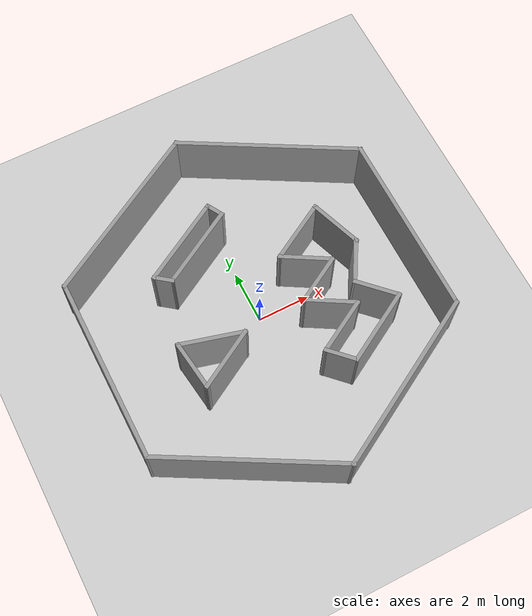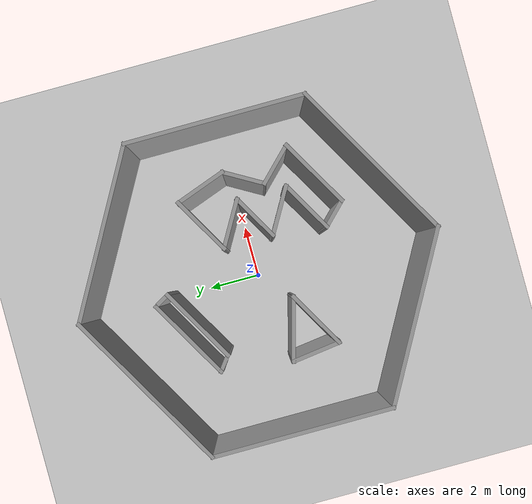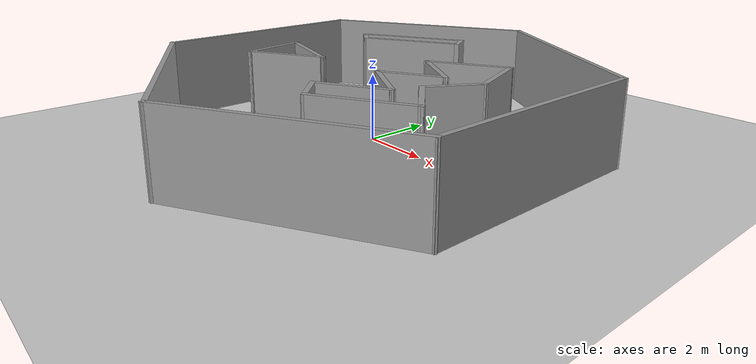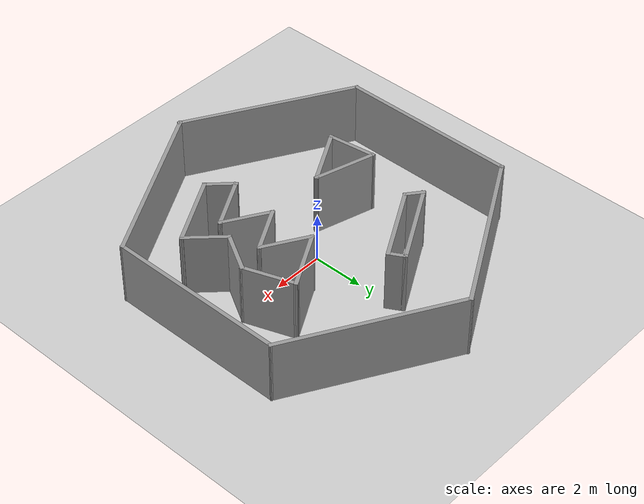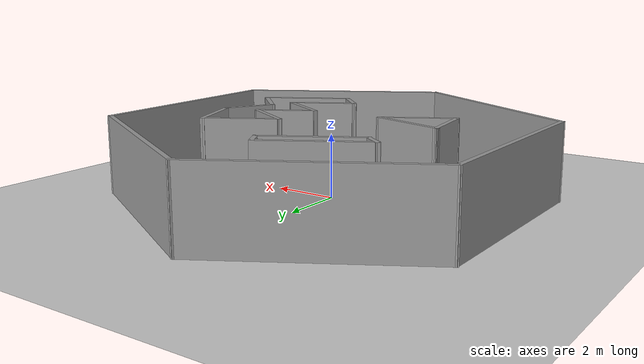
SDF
<sdf version='1.7'>
  <world name='default'>
    <!-- A global light source -->
    <include>
      <uri>model://sun</uri>
    </include>

    <!-- A ground plane -->
    <include>
      <uri>model://ground_plane</uri>
    </include>

    <physics type="ode">
      <real_time_update_rate>1000.0</real_time_update_rate>
      <max_step_size>0.001</max_step_size>
      <real_time_factor>1</real_time_factor>
      <ode>
        <solver>
          <type>quick</type>
          <iters>150</iters>
          <precon_iters>0</precon_iters>
          <sor>1.400000</sor>
          <use_dynamic_moi_rescaling>1</use_dynamic_moi_rescaling>
        </solver>
        <constraints>
          <cfm>0.00001</cfm>
          <erp>0.2</erp>
          <contact_max_correcting_vel>2000.000000</contact_max_correcting_vel>
          <contact_surface_layer>0.01000</contact_surface_layer>
        </constraints>
      </ode>
    </physics>

    <!-- Load world -->
    <include>
      <uri>
        model://warehouse_1
      </uri>
    </include>

    <scene>
      <ambient>0.4 0.4 0.4 1</ambient>
      <background>0.7 0.7 0.7 1</background>
      <shadows>true</shadows>
    </scene>

    <gui fullscreen='0'>
      <camera name='user_camera'>
        <pose>0.8 0.0 12.0 0 1.5708 0</pose>
        <view_controller>orbit</view_controller>
      </camera>
    </gui>
  </world>
</sdf>

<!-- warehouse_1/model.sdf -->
<sdf version='1.7'>
  <model name='Warehouse_1'>
    <pose>0 0 0 0 0 0</pose>
    <link name='Wall_10'>
      <collision name='Wall_10_Collision'>
        <geometry>
          <box>
            <size>7 0.15 2.5</size>
          </box>
        </geometry>
        <pose>0 0 1.25 0 -0 0</pose>
      </collision>
      <visual name='Wall_10_Visual'>
        <pose>0 0 1.25 0 -0 0</pose>
        <geometry>
          <box>
            <size>7 0.15 2.5</size>
          </box>
        </geometry>
        <material>
          <script>
            <uri>file://media/materials/scripts/gazebo.material</uri>
            <name>Gazebo/Grey</name>
          </script>
          <ambient>1 1 1 1</ambient>
        </material>
        <meta>
          <layer>0</layer>
        </meta>
      </visual>
      <pose>-2.97667 5.07387 0 0 -0 -2.61799</pose>
    </link>
    <link name='Wall_11'>
      <collision name='Wall_11_Collision'>
        <geometry>
          <box>
            <size>7 0.15 2.5</size>
          </box>
        </geometry>
        <pose>0 0 1.25 0 -0 0</pose>
      </collision>
      <visual name='Wall_11_Visual'>
        <pose>0 0 1.25 0 -0 0</pose>
        <geometry>
          <box>
            <size>7 0.15 2.5</size>
          </box>
        </geometry>
        <material>
          <script>
            <uri>file://media/materials/scripts/gazebo.material</uri>
            <name>Gazebo/Grey</name>
          </script>
          <ambient>1 1 1 1</ambient>
        </material>
        <meta>
          <layer>0</layer>
        </meta>
      </visual>
      <pose>-5.94281 -0.063627 0 0 -0 -1.5708</pose>
    </link>
    <link name='Wall_12'>
      <collision name='Wall_12_Collision'>
        <geometry>
          <box>
            <size>6.95585 0.15 2.5</size>
          </box>
        </geometry>
        <pose>0 0 1.25 0 -0 0</pose>
      </collision>
      <visual name='Wall_12_Visual'>
        <pose>0 0 1.25 0 -0 0</pose>
        <geometry>
          <box>
            <size>6.95585 0.15 2.5</size>
          </box>
        </geometry>
        <material>
          <script>
            <uri>file://media/materials/scripts/gazebo.material</uri>
            <name>Gazebo/Grey</name>
          </script>
          <ambient>1 1 1 1</ambient>
        </material>
        <meta>
          <layer>0</layer>
        </meta>
      </visual>
      <pose>-2.96608 -5.13756 0 0 -0 -0.505863</pose>
    </link>
    <link name='Wall_13'>
      <collision name='Wall_13_Collision'>
        <geometry>
          <box>
            <size>7.00782 0.15 2.5</size>
          </box>
        </geometry>
        <pose>0 0 1.25 0 -0 0</pose>
      </collision>
      <visual name='Wall_13_Visual'>
        <pose>0 0 1.25 0 -0 0</pose>
        <geometry>
          <box>
            <size>7.00782 0.15 2.5</size>
          </box>
        </geometry>
        <material>
          <script>
            <uri>file://media/materials/scripts/gazebo.material</uri>
            <name>Gazebo/Grey</name>
          </script>
          <ambient>1 1 1 1</ambient>
        </material>
        <meta>
          <layer>0</layer>
        </meta>
      </visual>
      <pose>2.9662 -5.08458 0 0 -0 0.519378</pose>
    </link>
    <link name='Wall_15'>
      <collision name='Wall_15_Collision'>
        <geometry>
          <box>
            <size>3.5 0.15 2.5</size>
          </box>
        </geometry>
        <pose>0 0 1.25 0 -0 0</pose>
      </collision>
      <visual name='Wall_15_Visual'>
        <pose>0 0 1.25 0 -0 0</pose>
        <geometry>
          <box>
            <size>3.5 0.15 2.5</size>
          </box>
        </geometry>
        <material>
          <script>
            <uri>file://media/materials/scripts/gazebo.material</uri>
            <name>Gazebo/Grey</name>
          </script>
          <ambient>1 1 1 1</ambient>
        </material>
        <meta>
          <layer>0</layer>
        </meta>
      </visual>
      <pose>-1.56685 3.06572 0 0 -0 0.523599</pose>
    </link>
    <link name='Wall_16'>
      <collision name='Wall_16_Collision'>
        <geometry>
          <box>
            <size>0.75 0.15 2.5</size>
          </box>
        </geometry>
        <pose>0 0 1.25 0 -0 0</pose>
      </collision>
      <visual name='Wall_16_Visual'>
        <pose>0 0 1.25 0 -0 0</pose>
        <geometry>
          <box>
            <size>0.75 0.15 2.5</size>
          </box>
        </geometry>
        <material>
          <script>
            <uri>file://media/materials/scripts/gazebo.material</uri>
            <name>Gazebo/Grey</name>
          </script>
          <ambient>1 1 1 1</ambient>
        </material>
        <meta>
          <layer>0</layer>
        </meta>
      </visual>
      <pose>0.033745 3.64341 0 0 -0 -1.0472</pose>
    </link>
    <link name='Wall_17'>
      <collision name='Wall_17_Collision'>
        <geometry>
          <box>
            <size>3.25 0.15 2.5</size>
          </box>
        </geometry>
        <pose>0 0 1.25 0 -0 0</pose>
      </collision>
      <visual name='Wall_17_Visual'>
        <pose>0 0 1.25 0 -0 0</pose>
        <geometry>
          <box>
            <size>3.25 0.15 2.5</size>
          </box>
        </geometry>
        <material>
          <script>
            <uri>file://media/materials/scripts/gazebo.material</uri>
            <name>Gazebo/Grey</name>
          </script>
          <ambient>1 1 1 1</ambient>
        </material>
        <meta>
          <layer>0</layer>
        </meta>
      </visual>
      <pose>-1.1586 2.6086 0 0 -0 -2.61799</pose>
    </link>
    <link name='Wall_18'>
      <collision name='Wall_18_Collision'>
        <geometry>
          <box>
            <size>0.8 0.15 2.5</size>
          </box>
        </geometry>
        <pose>0 0 1.25 0 -0 0</pose>
      </collision>
      <visual name='Wall_18_Visual'>
        <pose>0 0 1.25 0 -0 0</pose>
        <geometry>
          <box>
            <size>0.8 0.15 2.5</size>
          </box>
        </geometry>
        <material>
          <script>
            <uri>file://media/materials/scripts/gazebo.material</uri>
            <name>Gazebo/Grey</name>
          </script>
          <ambient>1 1 1 1</ambient>
        </material>
        <meta>
          <layer>0</layer>
        </meta>
      </visual>
      <pose>-2.75919 2.03091 0 0 -0 2.48919</pose>
    </link>
    <link name='Wall_20'>
      <collision name='Wall_20_Collision'>
        <geometry>
          <box>
            <size>2.5 0.15 2.5</size>
          </box>
        </geometry>
        <pose>0 0 1.25 0 -0 0</pose>
      </collision>
      <visual name='Wall_20_Visual'>
        <pose>0 0 1.25 0 -0 0</pose>
        <geometry>
          <box>
            <size>2.5 0.15 2.5</size>
          </box>
        </geometry>
        <material>
          <script>
            <uri>file://media/materials/scripts/gazebo.material</uri>
            <name>Gazebo/Grey</name>
          </script>
          <ambient>1 1 1 1</ambient>
        </material>
        <meta>
          <layer>0</layer>
        </meta>
      </visual>
      <pose>-2.22151 -0.724597 0 0 -0 -0.261799</pose>
    </link>
    <link name='Wall_21'>
      <collision name='Wall_21_Collision'>
        <geometry>
          <box>
            <size>2.5 0.15 2.5</size>
          </box>
        </geometry>
        <pose>0 0 1.25 0 -0 0</pose>
      </collision>
      <visual name='Wall_21_Visual'>
        <pose>0 0 1.25 0 -0 0</pose>
        <geometry>
          <box>
            <size>2.5 0.15 2.5</size>
          </box>
        </geometry>
        <material>
          <script>
            <uri>file://media/materials/scripts/gazebo.material</uri>
            <name>Gazebo/Grey</name>
          </script>
          <ambient>1 1 1 1</ambient>
        </material>
        <meta>
          <layer>0</layer>
        </meta>
      </visual>
      <pose>-2.10413 -1.61621 0 0 -0 -2.61799</pose>
    </link>
    <link name='Wall_22'>
      <collision name='Wall_22_Collision'>
        <geometry>
          <box>
            <size>1.94861 0.15 2.5</size>
          </box>
        </geometry>
        <pose>0 0 1.25 0 -0 0</pose>
      </collision>
      <visual name='Wall_22_Visual'>
        <pose>0 0 1.25 0 -0 0</pose>
        <geometry>
          <box>
            <size>1.94861 0.15 2.5</size>
          </box>
        </geometry>
        <material>
          <script>
            <uri>file://media/materials/scripts/gazebo.material</uri>
            <name>Gazebo/Grey</name>
          </script>
          <ambient>1 1 1 1</ambient>
        </material>
        <meta>
          <layer>0</layer>
        </meta>
      </visual>
      <pose>-3.23909 -1.3121 0 0 -0 1.7017</pose>
    </link>
    <link name='Wall_24'>
      <collision name='Wall_24_Collision'>
        <geometry>
          <box>
            <size>2.5 0.15 2.5</size>
          </box>
        </geometry>
        <pose>0 0 1.25 0 -0 0</pose>
      </collision>
      <visual name='Wall_24_Visual'>
        <pose>0 0 1.25 0 -0 0</pose>
        <geometry>
          <box>
            <size>2.5 0.15 2.5</size>
          </box>
        </geometry>
        <material>
          <script>
            <uri>file://media/materials/scripts/gazebo.material</uri>
            <name>Gazebo/Grey</name>
          </script>
          <ambient>1 1 1 1</ambient>
        </material>
        <meta>
          <layer>0</layer>
        </meta>
      </visual>
      <pose>2.30067 1.53477 0 0 -0 -2.61799</pose>
    </link>
    <link name='Wall_25'>
      <collision name='Wall_25_Collision'>
        <geometry>
          <box>
            <size>2 0.15 2.5</size>
          </box>
        </geometry>
        <pose>0 0 1.25 0 -0 0</pose>
      </collision>
      <visual name='Wall_25_Visual'>
        <pose>0 0 1.25 0 -0 0</pose>
        <geometry>
          <box>
            <size>2 0.15 2.5</size>
          </box>
        </geometry>
        <material>
          <script>
            <uri>file://media/materials/scripts/gazebo.material</uri>
            <name>Gazebo/Grey</name>
          </script>
          <ambient>1 1 1 1</ambient>
        </material>
        <meta>
          <layer>0</layer>
        </meta>
      </visual>
      <pose>2.08417 0.484768 0 0 -0 -0.523599</pose>
    </link>
    <link name='Wall_26'>
      <collision name='Wall_26_Collision'>
        <geometry>
          <box>
            <size>2 0.15 2.5</size>
          </box>
        </geometry>
        <pose>0 0 1.25 0 -0 0</pose>
      </collision>
      <visual name='Wall_26_Visual'>
        <pose>0 0 1.25 0 -0 0</pose>
        <geometry>
          <box>
            <size>2 0.15 2.5</size>
          </box>
        </geometry>
        <material>
          <script>
            <uri>file://media/materials/scripts/gazebo.material</uri>
            <name>Gazebo/Grey</name>
          </script>
          <ambient>1 1 1 1</ambient>
        </material>
        <meta>
          <layer>0</layer>
        </meta>
      </visual>
      <pose>2.08417 -0.440232 0 0 -0 -2.61799</pose>
    </link>
    <link name='Wall_27'>
      <collision name='Wall_27_Collision'>
        <geometry>
          <box>
            <size>2 0.15 2.5</size>
          </box>
        </geometry>
        <pose>0 0 1.25 0 -0 0</pose>
      </collision>
      <visual name='Wall_27_Visual'>
        <pose>0 0 1.25 0 -0 0</pose>
        <geometry>
          <box>
            <size>2 0.15 2.5</size>
          </box>
        </geometry>
        <material>
          <script>
            <uri>file://media/materials/scripts/gazebo.material</uri>
            <name>Gazebo/Grey</name>
          </script>
          <ambient>1 1 1 1</ambient>
        </material>
        <meta>
          <layer>0</layer>
        </meta>
      </visual>
      <pose>2.08417 -1.36523 0 0 -0 -0.523599</pose>
    </link>
    <link name='Wall_28'>
      <collision name='Wall_28_Collision'>
        <geometry>
          <box>
            <size>2.25 0.15 2.5</size>
          </box>
        </geometry>
        <pose>0 0 1.25 0 -0 0</pose>
      </collision>
      <visual name='Wall_28_Visual'>
        <pose>0 0 1.25 0 -0 0</pose>
        <geometry>
          <box>
            <size>2.25 0.15 2.5</size>
          </box>
        </geometry>
        <material>
          <script>
            <uri>file://media/materials/scripts/gazebo.material</uri>
            <name>Gazebo/Grey</name>
          </script>
          <ambient>1 1 1 1</ambient>
        </material>
        <meta>
          <layer>0</layer>
        </meta>
      </visual>
      <pose>1.97591 -2.35273 0 0 -0 -2.61799</pose>
    </link>
    <link name='Wall_29'>
      <collision name='Wall_29_Collision'>
        <geometry>
          <box>
            <size>1.25 0.15 2.5</size>
          </box>
        </geometry>
        <pose>0 0 1.25 0 -0 0</pose>
      </collision>
      <visual name='Wall_29_Visual'>
        <pose>0 0 1.25 0 -0 0</pose>
        <geometry>
          <box>
            <size>1.25 0.15 2.5</size>
          </box>
        </geometry>
        <material>
          <script>
            <uri>file://media/materials/scripts/gazebo.material</uri>
            <name>Gazebo/Grey</name>
          </script>
          <ambient>1 1 1 1</ambient>
        </material>
        <meta>
          <layer>0</layer>
        </meta>
      </visual>
      <pose>1.45549 -3.26664 0 0 -0 -0.785398</pose>
    </link>
    <link name='Wall_30'>
      <collision name='Wall_30_Collision'>
        <geometry>
          <box>
            <size>3 0.15 2.5</size>
          </box>
        </geometry>
        <pose>0 0 1.25 0 -0 0</pose>
      </collision>
      <visual name='Wall_30_Visual'>
        <pose>0 0 1.25 0 -0 0</pose>
        <geometry>
          <box>
            <size>3 0.15 2.5</size>
          </box>
        </geometry>
        <material>
          <script>
            <uri>file://media/materials/scripts/gazebo.material</uri>
            <name>Gazebo/Grey</name>
          </script>
          <ambient>1 1 1 1</ambient>
        </material>
        <meta>
          <layer>0</layer>
        </meta>
      </visual>
      <pose>3.07849 -2.94305 0 0 -0 0.523599</pose>
    </link>
    <link name='Wall_31'>
      <collision name='Wall_31_Collision'>
        <geometry>
          <box>
            <size>1.75 0.15 2.5</size>
          </box>
        </geometry>
        <pose>0 0 1.25 0 -0 0</pose>
      </collision>
      <visual name='Wall_31_Visual'>
        <pose>0 0 1.25 0 -0 0</pose>
        <geometry>
          <box>
            <size>1.75 0.15 2.5</size>
          </box>
        </geometry>
        <material>
          <script>
            <uri>file://media/materials/scripts/gazebo.material</uri>
            <name>Gazebo/Grey</name>
          </script>
          <ambient>1 1 1 1</ambient>
        </material>
        <meta>
          <layer>0</layer>
        </meta>
      </visual>
      <pose>3.74689 -1.66486 0 0 -0 2.35619</pose>
    </link>
    <link name='Wall_32'>
      <collision name='Wall_32_Collision'>
        <geometry>
          <box>
            <size>1.75 0.15 2.5</size>
          </box>
        </geometry>
        <pose>0 0 1.25 0 -0 0</pose>
      </collision>
      <visual name='Wall_32_Visual'>
        <pose>0 0 1.25 0 -0 0</pose>
        <geometry>
          <box>
            <size>1.75 0.15 2.5</size>
          </box>
        </geometry>
        <material>
          <script>
            <uri>file://media/materials/scripts/gazebo.material</uri>
            <name>Gazebo/Grey</name>
          </script>
          <ambient>1 1 1 1</ambient>
        </material>
        <meta>
          <layer>0</layer>
        </meta>
      </visual>
      <pose>3.58121 -0.406358 0 0 -0 1.0472</pose>
    </link>
    <link name='Wall_33'>
      <collision name='Wall_33_Collision'>
        <geometry>
          <box>
            <size>2.10184 0.15 2.5</size>
          </box>
        </geometry>
        <pose>0 0 1.25 0 -0 0</pose>
      </collision>
      <visual name='Wall_33_Visual'>
        <pose>0 0 1.25 0 -0 0</pose>
        <geometry>
          <box>
            <size>2.10184 0.15 2.5</size>
          </box>
        </geometry>
        <material>
          <script>
            <uri>file://media/materials/scripts/gazebo.material</uri>
            <name>Gazebo/Grey</name>
          </script>
          <ambient>1 1 1 1</ambient>
        </material>
        <meta>
          <layer>0</layer>
        </meta>
      </visual>
      <pose>3.64973 1.20436 0 0 -0 1.91735</pose>
    </link>
    <link name='Wall_8'>
      <collision name='Wall_8_Collision'>
        <geometry>
          <box>
            <size>7 0.15 2.5</size>
          </box>
        </geometry>
        <pose>0 0 1.25 0 -0 0</pose>
      </collision>
      <visual name='Wall_8_Visual'>
        <pose>0 0 1.25 0 -0 0</pose>
        <geometry>
          <box>
            <size>7 0.15 2.5</size>
          </box>
        </geometry>
        <material>
          <script>
            <uri>file://media/materials/scripts/gazebo.material</uri>
            <name>Gazebo/Grey</name>
          </script>
          <ambient>1 1 1 1</ambient>
        </material>
        <meta>
          <layer>0</layer>
        </meta>
      </visual>
      <pose>5.93213 0.042304 0 0 -0 1.57395</pose>
    </link>
    <link name='Wall_9'>
      <collision name='Wall_9_Collision'>
        <geometry>
          <box>
            <size>6.94731 0.15 2.5</size>
          </box>
        </geometry>
        <pose>0 0 1.25 0 -0 0</pose>
      </collision>
      <visual name='Wall_9_Visual'>
        <pose>0 0 1.25 0 -0 0</pose>
        <geometry>
          <box>
            <size>6.94731 0.15 2.5</size>
          </box>
        </geometry>
        <material>
          <script>
            <uri>file://media/materials/scripts/gazebo.material</uri>
            <name>Gazebo/Grey</name>
          </script>
          <ambient>1 1 1 1</ambient>
        </material>
        <meta>
          <layer>0</layer>
        </meta>
      </visual>
      <pose>2.9554 5.12683 0 0 -0 2.63146</pose>
    </link>
    <static>1</static>
  </model>
</sdf>
